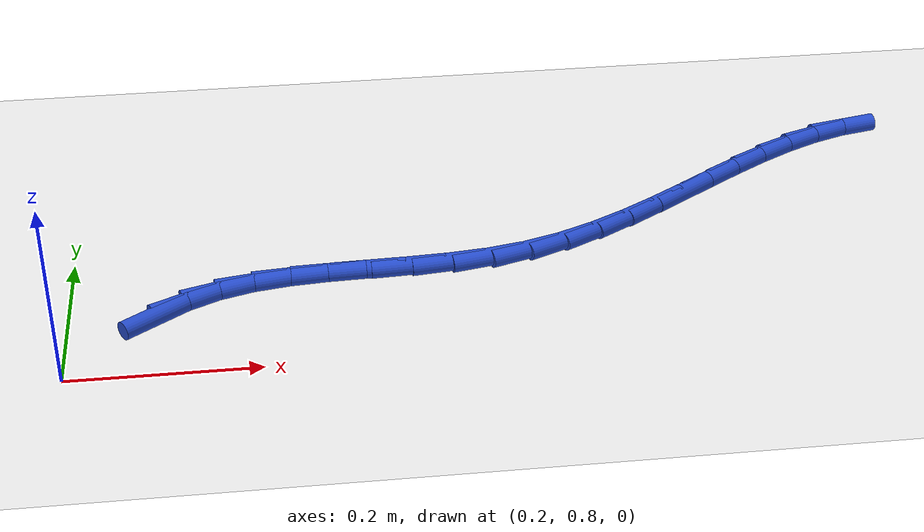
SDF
<sdf version="1.6">
 <world name="default">
  <model name="ground_plane">
   <static>1</static>
   <link name="link">
    <collision name="collision">
     <geometry><plane><normal>0 0 1</normal><size>100 100</size></plane></geometry>
     <surface><friction><ode><mu>100</mu><mu2>50</mu2></ode></friction></surface>
    </collision>
    <visual name="visual">
     <cast_shadows>0</cast_shadows>
     <geometry><plane><normal>0 0 1</normal><size>100 100</size></plane></geometry>
     <material>
      <script><uri>file://media/materials/scripts/gazebo.material</uri><name>Gazebo/WhiteGlow</name></script>
     </material>
    </visual>
   </link>
  </model>
  <model name="line">
   <link name="link_22">
    <pose>0.2905721349170899 0.886217657660076 0.01 0 1.57 0.6049977734661363</pose>
    <collision name="collision">
     <geometry><cylinder><radius>0.01</radius><length>0.08</length></cylinder></geometry>
    </collision>
    <visual name="visual">
     <material>
      <script><name>Gazebo/Blue</name><uri>file://media/materials/scripts/gazebo.material</uri></script>
     </material>
     <geometry><cylinder><radius>0.01</radius><length>0.08</length></cylinder></geometry>
    </visual>
   </link>
   <link name="link_23">
    <pose>0.32076723831693293 0.9070975411439043 0.01 0 1.57 0.4487748392204587</pose>
    <collision name="collision">
     <geometry><cylinder><radius>0.01</radius><length>0.08</length></cylinder></geometry>
    </collision>
    <visual name="visual">
     <material>
      <script><name>Gazebo/Blue</name><uri>file://media/materials/scripts/gazebo.material</uri></script>
     </material>
     <geometry><cylinder><radius>0.01</radius><length>0.08</length></cylinder></geometry>
    </visual>
   </link>
   <link name="link_24">
    <pose>0.3538422919194476 0.9230246650562957 0.01 0 1.57 0.28764588681178777</pose>
    <collision name="collision">
     <geometry><cylinder><radius>0.01</radius><length>0.08</length></cylinder></geometry>
    </collision>
    <visual name="visual">
     <material>
      <script><name>Gazebo/Blue</name><uri>file://media/materials/scripts/gazebo.material</uri></script>
     </material>
     <geometry><cylinder><radius>0.01</radius><length>0.08</length></cylinder></geometry>
    </visual>
   </link>
   <link name="link_25">
    <pose>0.3899305413883094 0.9337014037659046 0.01 0 1.57 0.16021983275278942</pose>
    <collision name="collision">
     <geometry><cylinder><radius>0.01</radius><length>0.08</length></cylinder></geometry>
    </collision>
    <visual name="visual">
     <material>
      <script><name>Gazebo/Blue</name><uri>file://media/materials/scripts/gazebo.material</uri></script>
     </material>
     <geometry><cylinder><radius>0.01</radius><length>0.08</length></cylinder></geometry>
    </visual>
   </link>
   <link name="link_26">
    <pose>0.4286571402405392 0.9399598168062934 0.01 0 1.57 0.07811345998192167</pose>
    <collision name="collision">
     <geometry><cylinder><radius>0.01</radius><length>0.08</length></cylinder></geometry>
    </collision>
    <visual name="visual">
     <material>
      <script><name>Gazebo/Blue</name><uri>file://media/materials/scripts/gazebo.material</uri></script>
     </material>
     <geometry><cylinder><radius>0.01</radius><length>0.08</length></cylinder></geometry>
    </visual>
   </link>
   <link name="link_27">
    <pose>0.46941425353159494 0.9431499870860284 0.01 0 1.57 0.03494937340459771</pose>
    <collision name="collision">
     <geometry><cylinder><radius>0.01</radius><length>0.08</length></cylinder></geometry>
    </collision>
    <visual name="visual">
     <material>
      <script><name>Gazebo/Blue</name><uri>file://media/materials/scripts/gazebo.material</uri></script>
     </material>
     <geometry><cylinder><radius>0.01</radius><length>0.08</length></cylinder></geometry>
    </visual>
   </link>
   <link name="link_28">
    <pose>0.5115928297644247 0.9446247023799725 0.01 0 1.57 0.025861237856905785</pose>
    <collision name="collision">
     <geometry><cylinder><radius>0.01</radius><length>0.08</length></cylinder></geometry>
    </collision>
    <visual name="visual">
     <material>
      <script><name>Gazebo/Blue</name><uri>file://media/materials/scripts/gazebo.material</uri></script>
     </material>
     <geometry><cylinder><radius>0.01</radius><length>0.08</length></cylinder></geometry>
    </visual>
   </link>
   <link name="link_29">
    <pose>0.5545838174419758 0.9457367504629886 0.01 0 1.57 0.04862930973185276</pose>
    <collision name="collision">
     <geometry><cylinder><radius>0.01</radius><length>0.08</length></cylinder></geometry>
    </collision>
    <visual name="visual">
     <material>
      <script><name>Gazebo/Blue</name><uri>file://media/materials/scripts/gazebo.material</uri></script>
     </material>
     <geometry><cylinder><radius>0.01</radius><length>0.08</length></cylinder></geometry>
    </visual>
   </link>
   <link name="link_30">
    <pose>0.5977781650671959 0.9478389191099389 0.01 0 1.57 0.10351316778377101</pose>
    <collision name="collision">
     <geometry><cylinder><radius>0.01</radius><length>0.08</length></cylinder></geometry>
    </collision>
    <visual name="visual">
     <material>
      <script><name>Gazebo/Blue</name><uri>file://media/materials/scripts/gazebo.material</uri></script>
     </material>
     <geometry><cylinder><radius>0.01</radius><length>0.08</length></cylinder></geometry>
    </visual>
   </link>
   <link name="link_31">
    <pose>0.6405668211430333 0.9522839960956866 0.01 0 1.57 0.19246012140656626</pose>
    <collision name="collision">
     <geometry><cylinder><radius>0.01</radius><length>0.08</length></cylinder></geometry>
    </collision>
    <visual name="visual">
     <material>
      <script><name>Gazebo/Blue</name><uri>file://media/materials/scripts/gazebo.material</uri></script>
     </material>
     <geometry><cylinder><radius>0.01</radius><length>0.08</length></cylinder></geometry>
    </visual>
   </link>
   <link name="link_32">
    <pose>0.6823408036860743 0.9604245824730442 0.01 0 1.57 0.3055809782618776</pose>
    <collision name="collision">
     <geometry><cylinder><radius>0.01</radius><length>0.08</length></cylinder></geometry>
    </collision>
    <visual name="visual">
     <material>
      <script><name>Gazebo/Blue</name><uri>file://media/materials/scripts/gazebo.material</uri></script>
     </material>
     <geometry><cylinder><radius>0.01</radius><length>0.08</length></cylinder></geometry>
    </visual>
   </link>
   <link name="link_33">
    <pose>0.7226653048711963 0.9731454264169739 0.01 0 1.57 0.40487203242769426</pose>
    <collision name="collision">
     <geometry><cylinder><radius>0.01</radius><length>0.08</length></cylinder></geometry>
    </collision>
    <visual name="visual">
     <material>
      <script><name>Gazebo/Blue</name><uri>file://media/materials/scripts/gazebo.material</uri></script>
     </material>
     <geometry><cylinder><radius>0.01</radius><length>0.08</length></cylinder></geometry>
    </visual>
   </link>
   <link name="link_34">
    <pose>0.7616552933825825 0.9898545098325305 0.01 0 1.57 0.4819630412846346</pose>
    <collision name="collision">
     <geometry><cylinder><radius>0.01</radius><length>0.08</length></cylinder></geometry>
    </collision>
    <visual name="visual">
     <material>
      <script><name>Gazebo/Blue</name><uri>file://media/materials/scripts/gazebo.material</uri></script>
     </material>
     <geometry><cylinder><radius>0.01</radius><length>0.08</length></cylinder></geometry>
    </visual>
   </link>
   <link name="link_35">
    <pose>0.7995339459274257 1.0096691547733416 0.01 0 1.57 0.537297461957851</pose>
    <collision name="collision">
     <geometry><cylinder><radius>0.01</radius><length>0.08</length></cylinder></geometry>
    </collision>
    <visual name="visual">
     <material>
      <script><name>Gazebo/Blue</name><uri>file://media/materials/scripts/gazebo.material</uri></script>
     </material>
     <geometry><cylinder><radius>0.01</radius><length>0.08</length></cylinder></geometry>
    </visual>
   </link>
   <link name="link_36">
    <pose>0.8365244392129185 1.031706683293035 0.01 0 1.57 0.5718363714529956</pose>
    <collision name="collision">
     <geometry><cylinder><radius>0.01</radius><length>0.08</length></cylinder></geometry>
    </collision>
    <visual name="visual">
     <material>
      <script><name>Gazebo/Blue</name><uri>file://media/materials/scripts/gazebo.material</uri></script>
     </material>
     <geometry><cylinder><radius>0.01</radius><length>0.08</length></cylinder></geometry>
    </visual>
   </link>
   <link name="link_37">
    <pose>0.8728499499462534 1.0550844174452383 0.01 0 1.57 0.5863182019594531</pose>
    <collision name="collision">
     <geometry><cylinder><radius>0.01</radius><length>0.08</length></cylinder></geometry>
    </collision>
    <visual name="visual">
     <material>
      <script><name>Gazebo/Blue</name><uri>file://media/materials/scripts/gazebo.material</uri></script>
     </material>
     <geometry><cylinder><radius>0.01</radius><length>0.08</length></cylinder></geometry>
    </visual>
   </link>
   <link name="link_38">
    <pose>0.9087336548346232 1.0789196792835785 0.01 0 1.57 0.5808524894237596</pose>
    <collision name="collision">
     <geometry><cylinder><radius>0.01</radius><length>0.08</length></cylinder></geometry>
    </collision>
    <visual name="visual">
     <material>
      <script><name>Gazebo/Blue</name><uri>file://media/materials/scripts/gazebo.material</uri></script>
     </material>
     <geometry><cylinder><radius>0.01</radius><length>0.08</length></cylinder></geometry>
    </visual>
   </link>
   <link name="link_39">
    <pose>0.9443987305852202 1.1023297908616836 0.01 0 1.57 0.5547347937019425</pose>
    <collision name="collision">
     <geometry><cylinder><radius>0.01</radius><length>0.08</length></cylinder></geometry>
    </collision>
    <visual name="visual">
     <material>
      <script><name>Gazebo/Blue</name><uri>file://media/materials/scripts/gazebo.material</uri></script>
     </material>
     <geometry><cylinder><radius>0.01</radius><length>0.08</length></cylinder></geometry>
    </visual>
   </link>
   <link name="link_40">
    <pose>0.9800683539052372 1.1244320742331806 0.01 0 1.57 0.5064342362517487</pose>
    <collision name="collision">
     <geometry><cylinder><radius>0.01</radius><length>0.08</length></cylinder></geometry>
    </collision>
    <visual name="visual">
     <material>
      <script><name>Gazebo/Blue</name><uri>file://media/materials/scripts/gazebo.material</uri></script>
     </material>
     <geometry><cylinder><radius>0.01</radius><length>0.08</length></cylinder></geometry>
    </visual>
   </link>
   <link name="link_41">
    <pose>1.0159657015018666 1.1443438514516973 0.01 0 1.57 0.43382387891929614</pose>
    <collision name="collision">
     <geometry><cylinder><radius>0.01</radius><length>0.08</length></cylinder></geometry>
    </collision>
    <visual name="visual">
     <material>
      <script><name>Gazebo/Blue</name><uri>file://media/materials/scripts/gazebo.material</uri></script>
     </material>
     <geometry><cylinder><radius>0.01</radius><length>0.08</length></cylinder></geometry>
    </visual>
   </link>
   <link name="link_42">
    <pose>1.0523139500823013 1.1611824445708614 0.01 0 1.57 0.33486695225909147</pose>
    <collision name="collision">
     <geometry><cylinder><radius>0.01</radius><length>0.08</length></cylinder></geometry>
    </collision>
    <visual name="visual">
     <material>
      <script><name>Gazebo/Blue</name><uri>file://media/materials/scripts/gazebo.material</uri></script>
     </material>
     <geometry><cylinder><radius>0.01</radius><length>0.08</length></cylinder></geometry>
    </visual>
   </link>
   <link name="link_43">
    <pose>1.0893362763537335 1.1740651756443001 0.01 0 1.57 0.20904646533501528</pose>
    <collision name="collision">
     <geometry><cylinder><radius>0.01</radius><length>0.08</length></cylinder></geometry>
    </collision>
    <visual name="visual">
     <material>
      <script><name>Gazebo/Blue</name><uri>file://media/materials/scripts/gazebo.material</uri></script>
     </material>
     <geometry><cylinder><radius>0.01</radius><length>0.08</length></cylinder></geometry>
    </visual>
   </link>
  </model>
 </world>
</sdf>
